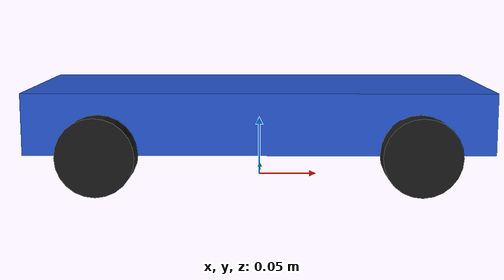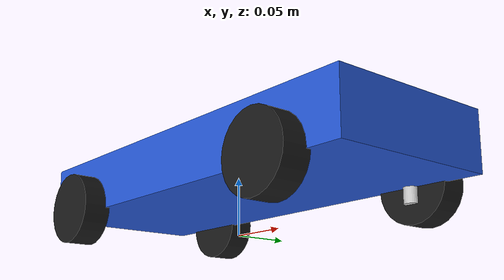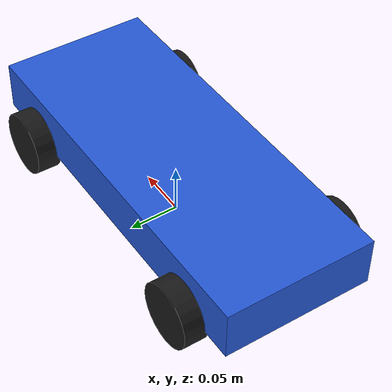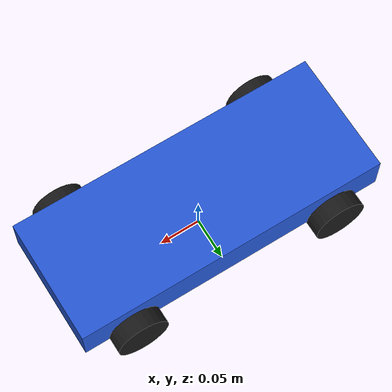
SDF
<?xml version="1.0" ?>
<sdf version="1.9">
  <model name='tt02'>

    <!-- 車体(シャーシ+ボディ相当の箱)。前後軸中点=x0, 地上クリアランス~3cm。 -->
    <link name='chassis'>
      <pose>0 0 0.055 0 0 0</pose>
      <inertial>
        <mass>1.5</mass>
        <inertia>
          <ixx>0.003125</ixx><ixy>0</ixy><ixz>0</ixz>
          <iyy>0.018360</iyy><iyz>0</iyz>
          <izz>0.020860</izz>
        </inertia>
      </inertial>
      <visual name='visual'>
        <geometry><box><size>0.38 0.15 0.05</size></box></geometry>
        <material>
          <ambient>0.15 0.35 0.85 1</ambient>
          <diffuse>0.15 0.35 0.85 1</diffuse>
          <specular>0.1 0.1 0.3 1</specular>
        </material>
      </visual>
      <collision name='collision'>
        <geometry><box><size>0.38 0.15 0.05</size></box></geometry>
      </collision>

      <sensor name="gpu_lidar" type="gpu_lidar">
        <pose>0.10 0 0.045 0 0 0</pose>
        <topic>scan</topic>
        <update_rate>10</update_rate>
        <lidar>
          <scan>
            <horizontal>
              <samples>640</samples>
              <resolution>1</resolution>
              <min_angle>-2.356</min_angle>
              <max_angle>2.356</max_angle>
            </horizontal>
            <vertical>
              <samples>1</samples>
              <min_angle>0</min_angle>
              <max_angle>0</max_angle>
            </vertical>
          </scan>
          <range>
            <min>0.1</min>
            <max>30.0</max>
            <resolution>0.01</resolution>
          </range>
          <noise>
            <type>gaussian</type>
            <mean>0.0</mean>
            <stddev>0.01</stddev>
          </noise>
        </lidar>
        <always_on>1</always_on>
        <visualize>true</visualize>
      </sensor>

      <sensor name="imu" type="imu">
        <pose>0 0 0 0 0 0</pose>
        <topic>imu</topic>
        <update_rate>100</update_rate>
        <always_on>1</always_on>
      </sensor>
    </link>

    <!-- ===== 車輪(cyl: length=幅0.024, radius=0.0315)。roll -1.5707 で軸を y に。 ===== -->
    <link name='front_left_wheel'>
      <pose>0.1285 0.083 0.0315 -1.5707 0 0</pose>
      <inertial>
        <mass>0.05</mass>
        <inertia><ixx>0.0000148</ixx><ixy>0</ixy><ixz>0</ixz><iyy>0.0000148</iyy><iyz>0</iyz><izz>0.0000248</izz></inertia>
      </inertial>
      <visual name='visual'>
        <geometry><cylinder><length>0.024</length><radius>0.0315</radius></cylinder></geometry>
        <material><ambient>0.1 0.1 0.1 1</ambient><diffuse>0.1 0.1 0.1 1</diffuse></material>
      </visual>
      <collision name='collision'>
        <geometry><cylinder><length>0.024</length><radius>0.0315</radius></cylinder></geometry>
        <surface><friction><ode><mu>0.9</mu><mu2>1.0</mu2><fdir1>0 0 1</fdir1></ode></friction></surface>
      </collision>
    </link>

    <link name='rear_left_wheel'>
      <pose>-0.1285 0.083 0.0315 -1.5707 0 0</pose>
      <inertial>
        <mass>0.05</mass>
        <inertia><ixx>0.0000148</ixx><ixy>0</ixy><ixz>0</ixz><iyy>0.0000148</iyy><iyz>0</iyz><izz>0.0000248</izz></inertia>
      </inertial>
      <visual name='visual'>
        <geometry><cylinder><length>0.024</length><radius>0.0315</radius></cylinder></geometry>
        <material><ambient>0.1 0.1 0.1 1</ambient><diffuse>0.1 0.1 0.1 1</diffuse></material>
      </visual>
      <collision name='collision'>
        <geometry><cylinder><length>0.024</length><radius>0.0315</radius></cylinder></geometry>
        <surface><friction><ode><mu>0.9</mu><mu2>1.0</mu2><fdir1>0 0 1</fdir1></ode></friction></surface>
      </collision>
    </link>

    <link name='front_right_wheel'>
      <pose>0.1285 -0.083 0.0315 -1.5707 0 0</pose>
      <inertial>
        <mass>0.05</mass>
        <inertia><ixx>0.0000148</ixx><ixy>0</ixy><ixz>0</ixz><iyy>0.0000148</iyy><iyz>0</iyz><izz>0.0000248</izz></inertia>
      </inertial>
      <visual name='visual'>
        <geometry><cylinder><length>0.024</length><radius>0.0315</radius></cylinder></geometry>
        <material><ambient>0.1 0.1 0.1 1</ambient><diffuse>0.1 0.1 0.1 1</diffuse></material>
      </visual>
      <collision name='collision'>
        <geometry><cylinder><length>0.024</length><radius>0.0315</radius></cylinder></geometry>
        <surface><friction><ode><mu>0.9</mu><mu2>1.0</mu2><fdir1>0 0 1</fdir1></ode></friction></surface>
      </collision>
    </link>

    <link name='rear_right_wheel'>
      <pose>-0.1285 -0.083 0.0315 -1.5707 0 0</pose>
      <inertial>
        <mass>0.05</mass>
        <inertia><ixx>0.0000148</ixx><ixy>0</ixy><ixz>0</ixz><iyy>0.0000148</iyy><iyz>0</iyz><izz>0.0000248</izz></inertia>
      </inertial>
      <visual name='visual'>
        <geometry><cylinder><length>0.024</length><radius>0.0315</radius></cylinder></geometry>
        <material><ambient>0.1 0.1 0.1 1</ambient><diffuse>0.1 0.1 0.1 1</diffuse></material>
      </visual>
      <collision name='collision'>
        <geometry><cylinder><length>0.024</length><radius>0.0315</radius></cylinder></geometry>
        <surface><friction><ode><mu>0.9</mu><mu2>1.0</mu2><fdir1>0 0 1</fdir1></ode></friction></surface>
      </collision>
    </link>

    <!-- ===== 前輪キングピン(操舵リンク): 前軸・僅かに内側・鉛直軸で操舵 ===== -->
    <link name="front_left_wheel_steering_link">
      <pose>0.1285 0.07 0.0315 0 0 0</pose>
      <inertial>
        <mass>0.02</mass>
        <inertia><ixx>0.00001</ixx><iyy>0.00001</iyy><izz>0.00001</izz></inertia>
      </inertial>
      <visual name="steering_link_visual">
        <geometry><cylinder><length>0.03</length><radius>0.006</radius></cylinder></geometry>
        <material><ambient>0.8 0.8 0.8 1</ambient><diffuse>0.8 0.8 0.8 1</diffuse></material>
      </visual>
    </link>

    <link name="front_right_wheel_steering_link">
      <pose>0.1285 -0.07 0.0315 0 0 0</pose>
      <inertial>
        <mass>0.02</mass>
        <inertia><ixx>0.00001</ixx><iyy>0.00001</iyy><izz>0.00001</izz></inertia>
      </inertial>
      <visual name="steering_link_visual">
        <geometry><cylinder><length>0.03</length><radius>0.006</radius></cylinder></geometry>
        <material><ambient>0.8 0.8 0.8 1</ambient><diffuse>0.8 0.8 0.8 1</diffuse></material>
      </visual>
    </link>

    <!-- ===== ジョイント ===== -->
    <joint name="front_left_wheel_steering_joint" type="revolute">
      <child>front_left_wheel_steering_link</child>
      <parent>chassis</parent>
      <axis>
        <xyz>0 0 1</xyz>
        <!-- velocity は実機サーボ相当の 10rad/s(≒570deg/s)。1.0 のままだと
             steer_p_gain を上げてもこの上限が律速になって速くならない。 -->
        <limit><lower>-0.6</lower><upper>0.6</upper><velocity>10.0</velocity><effort>5</effort></limit>
      </axis>
    </joint>

    <joint name="front_right_wheel_steering_joint" type="revolute">
      <parent>chassis</parent>
      <child>front_right_wheel_steering_link</child>
      <axis>
        <xyz>0 0 1</xyz>
        <limit><lower>-0.6</lower><upper>0.6</upper><velocity>10.0</velocity><effort>5</effort></limit>
      </axis>
    </joint>

    <joint name='front_left_wheel_joint' type='revolute'>
      <parent>front_left_wheel_steering_link</parent>
      <child>front_left_wheel</child>
      <axis><xyz>0 0 1</xyz><limit><lower>-1.79769e+308</lower><upper>1.79769e+308</upper></limit></axis>
    </joint>

    <joint name='front_right_wheel_joint' type='revolute'>
      <parent>front_right_wheel_steering_link</parent>
      <child>front_right_wheel</child>
      <axis><xyz>0 0 1</xyz><limit><lower>-1.79769e+308</lower><upper>1.79769e+308</upper></limit></axis>
    </joint>

    <joint name='rear_left_wheel_joint' type='revolute'>
      <parent>chassis</parent>
      <child>rear_left_wheel</child>
      <axis><xyz>0 0 1</xyz><limit><lower>-1.79769e+308</lower><upper>1.79769e+308</upper></limit></axis>
    </joint>

    <joint name='rear_right_wheel_joint' type='revolute'>
      <parent>chassis</parent>
      <child>rear_right_wheel</child>
      <axis><xyz>0 0 1</xyz><limit><lower>-1.79769e+308</lower><upper>1.79769e+308</upper></limit></axis>
    </joint>

    <!-- Ackermann 駆動+操舵。cmd_vel(Twist) を /model/tt02/cmd_vel で購読。 -->
    <plugin filename="gz-sim-ackermann-steering-system" name="gz::sim::systems::AckermannSteering">
      <left_joint>front_left_wheel_joint</left_joint>
      <left_joint>rear_left_wheel_joint</left_joint>
      <right_joint>front_right_wheel_joint</right_joint>
      <right_joint>rear_right_wheel_joint</right_joint>
      <left_steering_joint>front_left_wheel_steering_joint</left_steering_joint>
      <right_steering_joint>front_right_wheel_steering_joint</right_steering_joint>
      <kingpin_width>0.14</kingpin_width>
      <steering_limit>0.5</steering_limit>
      <steer_p_gain>15.0</steer_p_gain>
      <wheel_base>0.257</wheel_base>
      <wheel_separation>0.166</wheel_separation>
      <wheel_radius>0.0315</wheel_radius>
      <min_velocity>-2</min_velocity>
      <max_velocity>5</max_velocity>
      <min_acceleration>-3</min_acceleration>
      <max_acceleration>3</max_acceleration>
    </plugin>

    <plugin filename="gz-sim-joint-state-publisher-system"
            name="gz::sim::systems::JointStatePublisher">
      <joint_name>front_left_wheel_steering_joint</joint_name>
      <joint_name>front_right_wheel_steering_joint</joint_name>
    </plugin>

    <plugin filename="gz-sim-odometry-publisher-system"
            name="gz::sim::systems::OdometryPublisher">
      <odom_topic>/ground_truth/odom</odom_topic>
      <odom_frame>world</odom_frame>
      <robot_base_frame>tt02_gt</robot_base_frame>
      <odom_publish_frequency>50</odom_publish_frequency>
      <dimensions>2</dimensions>
    </plugin>

  </model>
</sdf>
